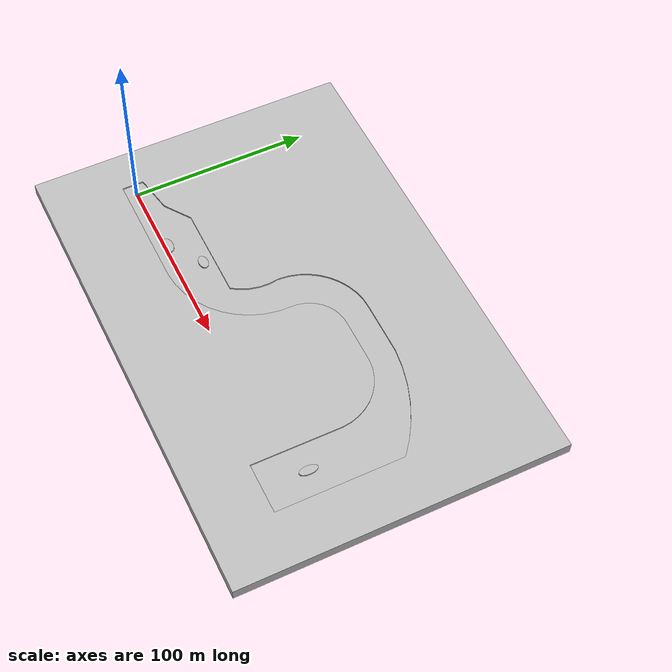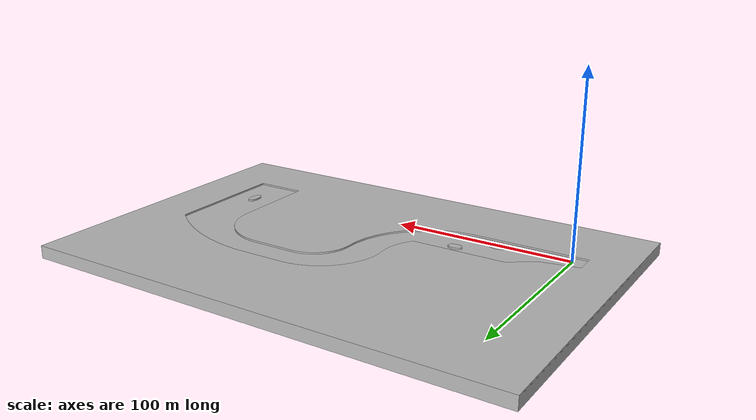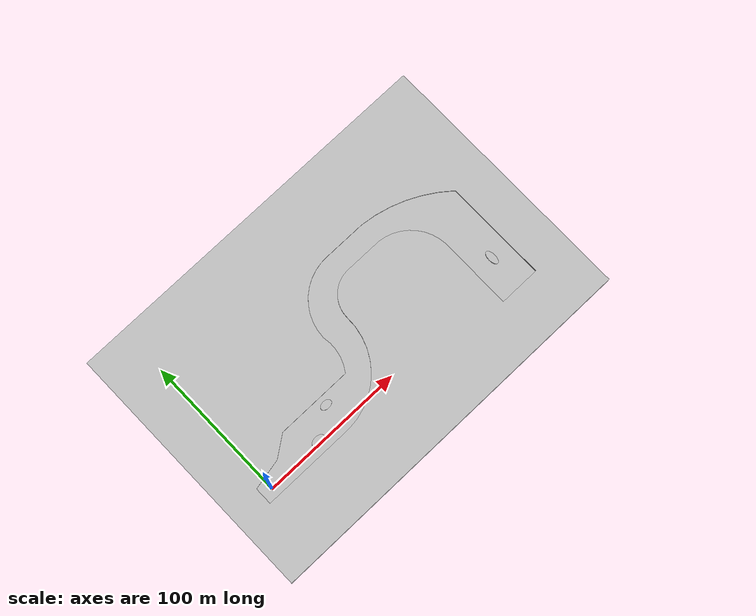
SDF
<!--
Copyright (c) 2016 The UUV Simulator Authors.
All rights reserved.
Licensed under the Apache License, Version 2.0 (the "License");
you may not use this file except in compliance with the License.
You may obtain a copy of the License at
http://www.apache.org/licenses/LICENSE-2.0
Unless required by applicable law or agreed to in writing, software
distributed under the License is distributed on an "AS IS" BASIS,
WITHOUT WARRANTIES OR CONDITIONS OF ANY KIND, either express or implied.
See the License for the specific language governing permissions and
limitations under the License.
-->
<?xml version="1.0" ?>
<sdf version="1.5">
  <world name="jar06">
    <physics name="default_physics" default="true" type="ode">
      <max_step_size>0.002</max_step_size>
      <real_time_factor>1</real_time_factor>
      <real_time_update_rate>500</real_time_update_rate>
      <ode>
        <solver>
          <type>quick</type>
          <iters>50</iters>
          <sor>0.5</sor>
        </solver>
      </ode>
    </physics>
    <scene>
      <ambient>0.01 0.01 0.01 1.0</ambient>
      <sky>
        <clouds>
          <speed>12</speed>
        </clouds>
      </sky>
      <shadows>0</shadows>
    </scene>

    <!-- Global light source -->
    <include>
      <uri>model://sun</uri>
    </include>

    <include>
      <uri>model://jar06</uri>
      <pose>0 0 0 0 0 0</pose>
    </include>

    <plugin name="underwater_current_plugin" filename="libuuv_underwater_current_ros_plugin.so">
      <namespace>hydrodynamics</namespace>
      <constant_current>
        <topic>current_velocity</topic>
        <velocity>
          <mean>0</mean>
          <min>0</min>
          <max>5</max>
          <mu>0.0</mu>
          <noiseAmp>0.0</noiseAmp>
        </velocity>

        <horizontal_angle>
          <mean>0</mean>
          <min>-3.141592653589793238</min>
          <max>3.141592653589793238</max>
          <mu>0.0</mu>
          <noiseAmp>0.0</noiseAmp>
        </horizontal_angle>

        <vertical_angle>
          <mean>0</mean>
          <min>-3.141592653589793238</min>
          <max>3.141592653589793238</max>
          <mu>0.0</mu>
          <noiseAmp>0.0</noiseAmp>
        </vertical_angle>
      </constant_current>
    </plugin>

    <plugin name="sc_interface" filename="libuuv_sc_ros_interface_plugin.so"/>

  </world>
</sdf>

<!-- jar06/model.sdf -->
<sdf version="1.5">
<model name="jar06">
  <static>true</static>
  <link name="jar06_link">

  <visual name="surface">
    <cast_shadows>false</cast_shadows>
    <pose>90 55 0 0 0 0</pose>
    <geometry>
      <box>
        <size>240 150 .1</size>
      </box>
    </geometry>
    <material>
      <script>
        <uri>file://Media/materials/scripts/waves.material</uri>
        <name>UUVSimulator/SimpleWaves</name>
      </script>
    </material>
  </visual>

  <visual name="seafloor">
    <pose>-30 -49 -6 0 0 0</pose>
    <geometry>
      <mesh><uri>model://jar06/meshes/jar06.stl</uri><scale>1 1 1</scale></mesh>
    </geometry>
    <material>
      <script>
        <uri>file://Media/materials/scripts/sand.material</uri>
        <name>UUVSimulator/SandAndStones</name>
      </script>
    </material>
  </visual>

  <collision name="seafloor">
    <pose>-30 -49 -6 0 0 0</pose>
    <geometry>
      <mesh><uri>model://jar06/meshes/jar06.stl</uri><scale>1 1 1</scale></mesh>
    </geometry>
  </collision>

  </link>
</model>
</sdf>
